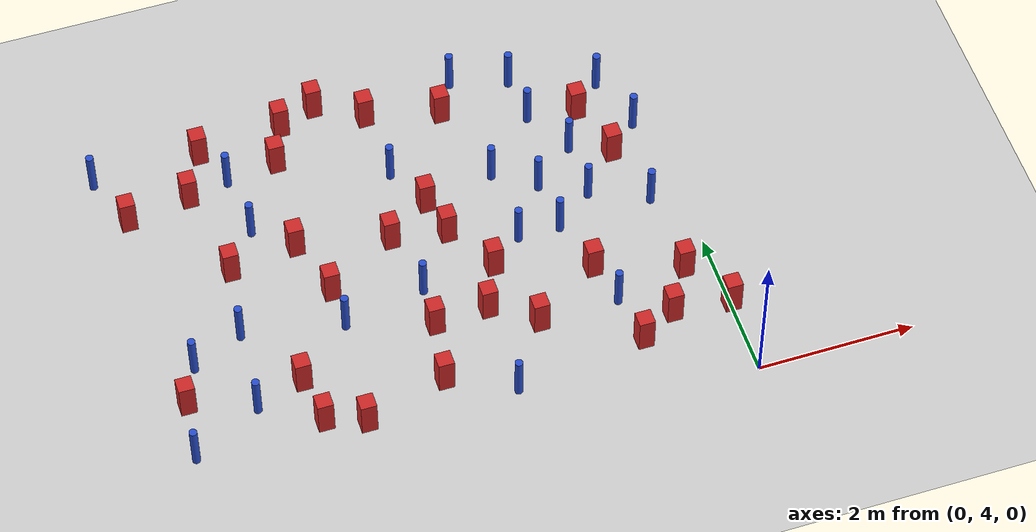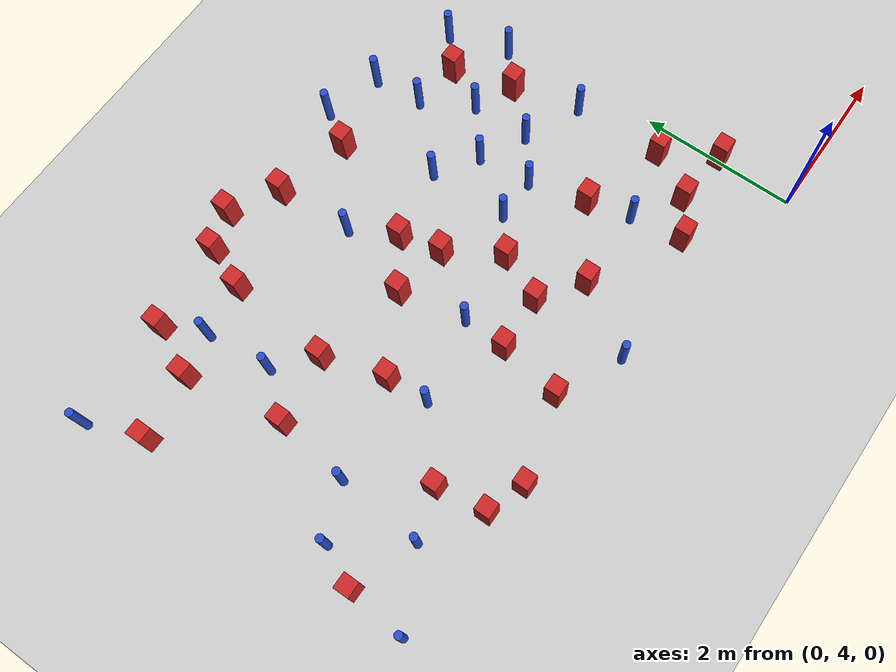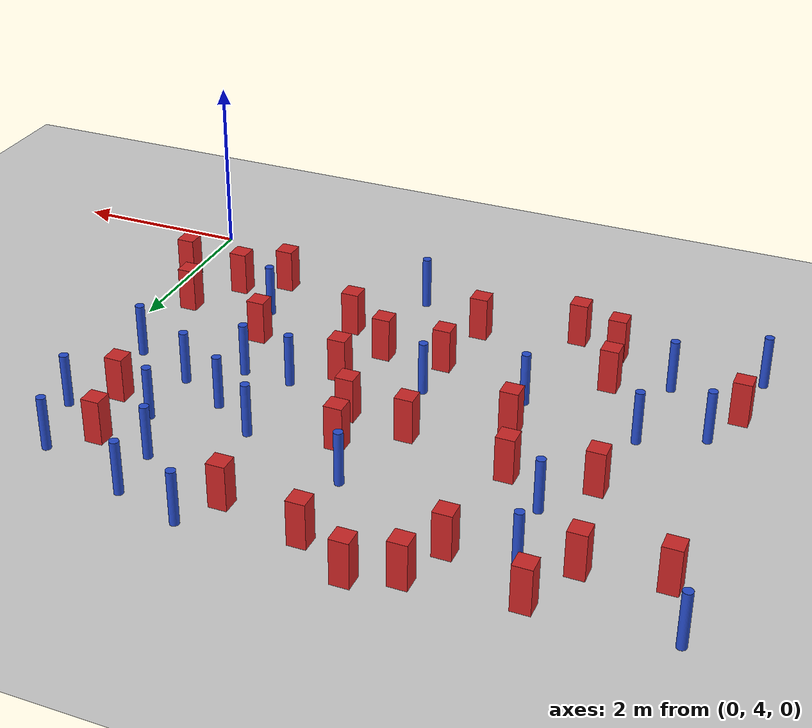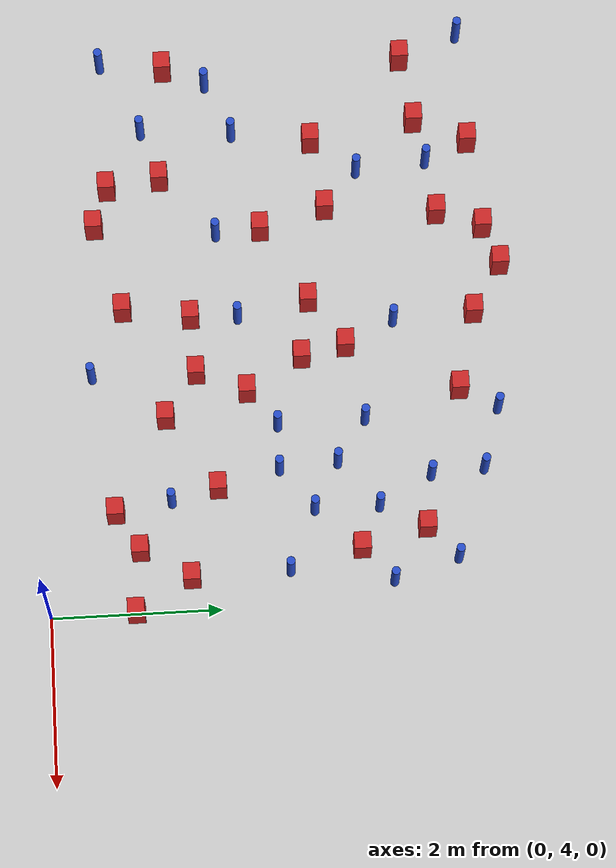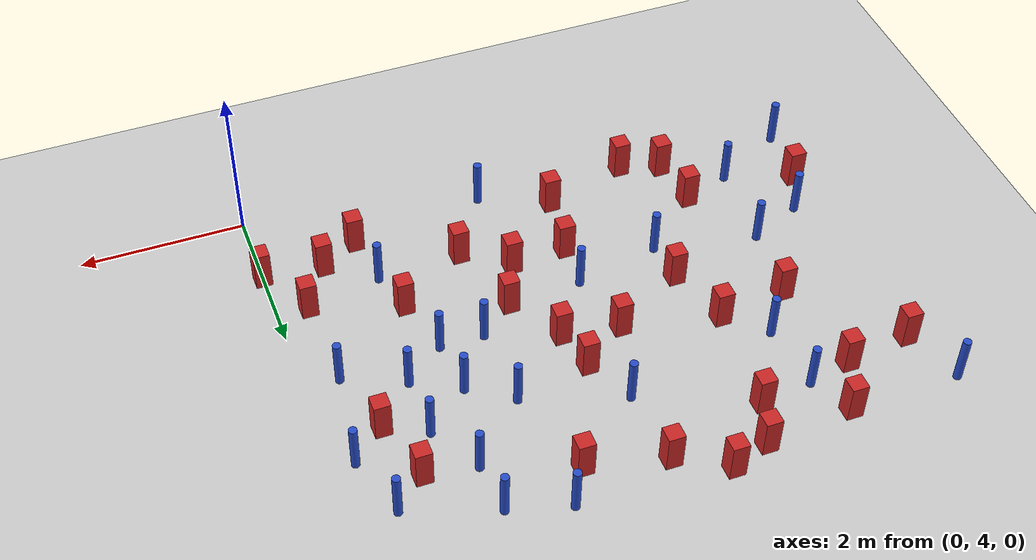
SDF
<sdf version="1.6">
 <world name="default">
  <model name="ground_plane">
   <static>1</static>
   <link name="link">
    <collision name="collision">
     <geometry><plane><normal>0 0 1</normal><size>100 100</size></plane></geometry>
     <surface><friction><ode><mu>100</mu><mu2>50</mu2></ode></friction></surface>
    </collision>
    <visual name="visual">
     <cast_shadows>0</cast_shadows>
     <geometry><plane><normal>0 0 1</normal><size>100 100</size></plane></geometry>
     <material>
      <ambient>1.0 1.0 1.0 1.0</ambient>
      <diffuse>0.8 0.8 0.8 1.0</diffuse>
      <specular>0.01 0.01 0.01 1.000000</specular>
     </material>
    </visual>
   </link>
  </model>
  <model name="pole_obstacle0">
   <static>true</static>
   <pose>-1.12669661835 7.13284007502 7.38925637345e-09 -8.47170692799e-08 1.24976765033e-08 -1.74513093018e-07</pose>
   <link name="link">
    <pose>0 0 0.3 0 -0 0</pose>
    <inertial>
     <mass>1</mass>
     <inertia><ixx>0.145833</ixx><ixy>0</ixy><ixz>0</ixz><iyy>0.145833</iyy><iyz>0</iyz><izz>0.125</izz></inertia>
    </inertial>
    <collision name="collision">
     <geometry><cylinder><radius>0.05</radius><length>.6</length></cylinder></geometry>
    </collision>
    <visual name="visual">
     <geometry><cylinder><radius>0.05</radius><length>.6</length></cylinder></geometry>
     <material>
      <script><name>Gazebo/Blue</name><uri>file://media/materials/scripts/gazebo.material</uri></script>
     </material>
    </visual>
   </link>
  </model>
  <model name="pole_obstacle2">
   <static>true</static>
   <pose>-4.58328691673 6.12758098638 7.38925637345e-09 -8.47170692796e-08 1.24976764786e-08 -1.74513093032e-07</pose>
   <link name="link">
    <pose>0 0 0.3 0 -0 0</pose>
    <inertial>
     <mass>1</mass>
     <inertia><ixx>0.145833</ixx><ixy>0</ixy><ixz>0</ixz><iyy>0.145833</iyy><iyz>0</iyz><izz>0.125</izz></inertia>
    </inertial>
    <collision name="collision">
     <geometry><cylinder><radius>0.05</radius><length>.6</length></cylinder></geometry>
    </collision>
    <visual name="visual">
     <geometry><cylinder><radius>0.05</radius><length>.6</length></cylinder></geometry>
     <material>
      <script><name>Gazebo/Blue</name><uri>file://media/materials/scripts/gazebo.material</uri></script>
     </material>
    </visual>
   </link>
  </model>
  <model name="pole_obstacle3">
   <static>true</static>
   <pose>-6.9991059545 9.16685258325 7.38925637345e-09 -8.471706928e-08 1.24976765081e-08 -1.74513093015e-07</pose>
   <link name="link">
    <pose>0 0 0.3 0 -0 0</pose>
    <inertial>
     <mass>1</mass>
     <inertia><ixx>0.145833</ixx><ixy>0</ixy><ixz>0</ixz><iyy>0.145833</iyy><iyz>0</iyz><izz>0.125</izz></inertia>
    </inertial>
    <collision name="collision">
     <geometry><cylinder><radius>0.05</radius><length>.6</length></cylinder></geometry>
    </collision>
    <visual name="visual">
     <geometry><cylinder><radius>0.05</radius><length>.6</length></cylinder></geometry>
     <material>
      <script><name>Gazebo/Blue</name><uri>file://media/materials/scripts/gazebo.material</uri></script>
     </material>
    </visual>
   </link>
  </model>
  <model name="pole_obstacle10">
   <static>true</static>
   <pose>-5.38365069876 8.69273519656 7.38925637345e-09 -8.471706928e-08 1.24976765081e-08 -1.74513093015e-07</pose>
   <link name="link">
    <pose>0 0 0.3 0 -0 0</pose>
    <inertial>
     <mass>1</mass>
     <inertia><ixx>0.145833</ixx><ixy>0</ixy><ixz>0</ixz><iyy>0.145833</iyy><iyz>0</iyz><izz>0.125</izz></inertia>
    </inertial>
    <collision name="collision">
     <geometry><cylinder><radius>0.05</radius><length>.6</length></cylinder></geometry>
    </collision>
    <visual name="visual">
     <geometry><cylinder><radius>0.05</radius><length>.6</length></cylinder></geometry>
     <material>
      <script><name>Gazebo/Blue</name><uri>file://media/materials/scripts/gazebo.material</uri></script>
     </material>
    </visual>
   </link>
  </model>
  <model name="square_post_obstacle11">
   <static>true</static>
   <pose>-4.04240728268 9.49389917569 1.91545236811e-07 -7.35059704564e-06 1.12565212e-07 2.39332434364e-05</pose>
   <link name="link">
    <pose>0 0 0.25 0 -0 0</pose>
    <inertial>
     <mass>100</mass>
     <inertia>
      <ixx>0.166667</ixx>
      <ixy>0</ixy>
      <ixz>0</ixz>
      <iyy>0.166667</iyy>
      <iyz>0</iyz>
      <izz>0.166667</izz>
     </inertia>
    </inertial>
    <collision name="collision"><geometry><box><size>.2 .2 .5</size></box></geometry></collision>
    <visual name="visual">
     <geometry><box><size>.2 .2 .5</size></box></geometry>
     <material>
      <script><name>Gazebo/Red</name><uri>file://media/materials/scripts/gazebo.material</uri></script>
     </material>
    </visual>
   </link>
  </model>
  <model name="pole_obstacle15">
   <static>true</static>
   <pose>-3.52819994219 6.34154515081 7.38925637345e-09 -8.47170692798e-08 1.24976765033e-08 -1.74513093019e-07</pose>
   <link name="link">
    <pose>0 0 0.3 0 -0 0</pose>
    <inertial>
     <mass>1</mass>
     <inertia><ixx>0.145833</ixx><ixy>0</ixy><ixz>0</ixz><iyy>0.145833</iyy><iyz>0</iyz><izz>0.125</izz></inertia>
    </inertial>
    <collision name="collision">
     <geometry><cylinder><radius>0.05</radius><length>.6</length></cylinder></geometry>
    </collision>
    <visual name="visual">
     <geometry><cylinder><radius>0.05</radius><length>.6</length></cylinder></geometry>
     <material>
      <script><name>Gazebo/Blue</name><uri>file://media/materials/scripts/gazebo.material</uri></script>
     </material>
    </visual>
   </link>
  </model>
  <model name="pole_obstacle17">
   <static>true</static>
   <pose>-3.39878785929 8.18392674902 7.38925637345e-09 -8.47170692793e-08 1.24976764408e-08 -1.74513093041e-07</pose>
   <link name="link">
    <pose>0 0 0.3 0 -0 0</pose>
    <inertial>
     <mass>1</mass>
     <inertia><ixx>0.145833</ixx><ixy>0</ixy><ixz>0</ixz><iyy>0.145833</iyy><iyz>0</iyz><izz>0.125</izz></inertia>
    </inertial>
    <collision name="collision">
     <geometry><cylinder><radius>0.05</radius><length>.6</length></cylinder></geometry>
    </collision>
    <visual name="visual">
     <geometry><cylinder><radius>0.05</radius><length>.6</length></cylinder></geometry>
     <material>
      <script><name>Gazebo/Blue</name><uri>file://media/materials/scripts/gazebo.material</uri></script>
     </material>
    </visual>
   </link>
  </model>
  <model name="pole_obstacle26">
   <static>true</static>
   <pose>-6.81604922939 4.81510808099 7.38925637345e-09 -8.47170692796e-08 1.24976764786e-08 -1.74513093032e-07</pose>
   <link name="link">
    <pose>0 0 0.3 0 -0 0</pose>
    <inertial>
     <mass>1</mass>
     <inertia><ixx>0.145833</ixx><ixy>0</ixy><ixz>0</ixz><iyy>0.145833</iyy><iyz>0</iyz><izz>0.125</izz></inertia>
    </inertial>
    <collision name="collision">
     <geometry><cylinder><radius>0.05</radius><length>.6</length></cylinder></geometry>
    </collision>
    <visual name="visual">
     <geometry><cylinder><radius>0.05</radius><length>.6</length></cylinder></geometry>
     <material>
      <script><name>Gazebo/Blue</name><uri>file://media/materials/scripts/gazebo.material</uri></script>
     </material>
    </visual>
   </link>
  </model>
  <model name="square_post_obstacle20">
   <static>true</static>
   <pose>-2.32262070023 5.43514400345 1.91545236811e-07 -7.35059704564e-06 1.12565212e-07 2.39332434364e-05</pose>
   <link name="link">
    <pose>0 0 0.25 0 -0 0</pose>
    <inertial>
     <mass>100</mass>
     <inertia>
      <ixx>0.166667</ixx>
      <ixy>0</ixy>
      <ixz>0</ixz>
      <iyy>0.166667</iyy>
      <iyz>0</iyz>
      <izz>0.166667</izz>
     </inertia>
    </inertial>
    <collision name="collision"><geometry><box><size>.2 .2 .5</size></box></geometry></collision>
    <visual name="visual">
     <geometry><box><size>.2 .2 .5</size></box></geometry>
     <material>
      <script><name>Gazebo/Red</name><uri>file://media/materials/scripts/gazebo.material</uri></script>
     </material>
    </visual>
   </link>
  </model>
  <model name="square_post_obstacle23">
   <static>true</static>
   <pose>-2.99444622453 7.07370898037 1.91545236811e-07 -7.35059704564e-06 1.12565212e-07 2.39332434364e-05</pose>
   <link name="link">
    <pose>0 0 0.25 0 -0 0</pose>
    <inertial>
     <mass>100</mass>
     <inertia>
      <ixx>0.166667</ixx>
      <ixy>0</ixy>
      <ixz>0</ixz>
      <iyy>0.166667</iyy>
      <iyz>0</iyz>
      <izz>0.166667</izz>
     </inertia>
    </inertial>
    <collision name="collision"><geometry><box><size>.2 .2 .5</size></box></geometry></collision>
    <visual name="visual">
     <geometry><box><size>.2 .2 .5</size></box></geometry>
     <material>
      <script><name>Gazebo/Red</name><uri>file://media/materials/scripts/gazebo.material</uri></script>
     </material>
    </visual>
   </link>
  </model>
  <model name="pole_obstacle35">
   <static>true</static>
   <pose>-2.253707353 9.35775532608 7.38925637345e-09 -8.47170692793e-08 1.24976764408e-08 -1.74513093041e-07</pose>
   <link name="link">
    <pose>0 0 0.3 0 -0 0</pose>
    <inertial>
     <mass>1</mass>
     <inertia><ixx>0.145833</ixx><ixy>0</ixy><ixz>0</ixz><iyy>0.145833</iyy><iyz>0</iyz><izz>0.125</izz></inertia>
    </inertial>
    <collision name="collision">
     <geometry><cylinder><radius>0.05</radius><length>.6</length></cylinder></geometry>
    </collision>
    <visual name="visual">
     <geometry><cylinder><radius>0.05</radius><length>.6</length></cylinder></geometry>
     <material>
      <script><name>Gazebo/Blue</name><uri>file://media/materials/scripts/gazebo.material</uri></script>
     </material>
    </visual>
   </link>
  </model>
  <model name="square_post_obstacle31">
   <static>true</static>
   <pose>-4.7261057558 8.78004790249 1.91545236811e-07 -7.35059704564e-06 1.12565212e-07 2.39332434364e-05</pose>
   <link name="link">
    <pose>0 0 0.25 0 -0 0</pose>
    <inertial>
     <mass>100</mass>
     <inertia>
      <ixx>0.166667</ixx>
      <ixy>0</ixy>
      <ixz>0</ixz>
      <iyy>0.166667</iyy>
      <iyz>0</iyz>
      <izz>0.166667</izz>
     </inertia>
    </inertial>
    <collision name="collision"><geometry><box><size>.2 .2 .5</size></box></geometry></collision>
    <visual name="visual">
     <geometry><box><size>.2 .2 .5</size></box></geometry>
     <material>
      <script><name>Gazebo/Red</name><uri>file://media/materials/scripts/gazebo.material</uri></script>
     </material>
    </visual>
   </link>
  </model>
  <model name="square_post_obstacle33">
   <static>true</static>
   <pose>0.00687568278995 5.00040817203 1.91545236811e-07 -7.35059704564e-06 1.12565212e-07 2.39332434364e-05</pose>
   <link name="link">
    <pose>0 0 0.25 0 -0 0</pose>
    <inertial>
     <mass>100</mass>
     <inertia>
      <ixx>0.166667</ixx>
      <ixy>0</ixy>
      <ixz>0</ixz>
      <iyy>0.166667</iyy>
      <iyz>0</iyz>
      <izz>0.166667</izz>
     </inertia>
    </inertial>
    <collision name="collision"><geometry><box><size>.2 .2 .5</size></box></geometry></collision>
    <visual name="visual">
     <geometry><box><size>.2 .2 .5</size></box></geometry>
     <material>
      <script><name>Gazebo/Red</name><uri>file://media/materials/scripts/gazebo.material</uri></script>
     </material>
    </visual>
   </link>
  </model>
  <model name="square_post_obstacle36">
   <static>true</static>
   <pose>-1.19484303404 4.80414725474 1.91545236811e-07 -7.35059704564e-06 1.12565212e-07 2.39332434364e-05</pose>
   <link name="link">
    <pose>0 0 0.25 0 -0 0</pose>
    <inertial>
     <mass>100</mass>
     <inertia>
      <ixx>0.166667</ixx>
      <ixy>0</ixy>
      <ixz>0</ixz>
      <iyy>0.166667</iyy>
      <iyz>0</iyz>
      <izz>0.166667</izz>
     </inertia>
    </inertial>
    <collision name="collision"><geometry><box><size>.2 .2 .5</size></box></geometry></collision>
    <visual name="visual">
     <geometry><box><size>.2 .2 .5</size></box></geometry>
     <material>
      <script><name>Gazebo/Red</name><uri>file://media/materials/scripts/gazebo.material</uri></script>
     </material>
    </visual>
   </link>
  </model>
  <model name="pole_obstacle48">
   <static>true</static>
   <pose>-5.84738374619 6.3715535261 7.38925637345e-09 -8.47170692796e-08 1.24976764786e-08 -1.74513093032e-07</pose>
   <link name="link">
    <pose>0 0 0.3 0 -0 0</pose>
    <inertial>
     <mass>1</mass>
     <inertia><ixx>0.145833</ixx><ixy>0</ixy><ixz>0</ixz><iyy>0.145833</iyy><iyz>0</iyz><izz>0.125</izz></inertia>
    </inertial>
    <collision name="collision">
     <geometry><cylinder><radius>0.05</radius><length>.6</length></cylinder></geometry>
    </collision>
    <visual name="visual">
     <geometry><cylinder><radius>0.05</radius><length>.6</length></cylinder></geometry>
     <material>
      <script><name>Gazebo/Blue</name><uri>file://media/materials/scripts/gazebo.material</uri></script>
     </material>
    </visual>
   </link>
  </model>
  <model name="square_post_obstacle48">
   <static>true</static>
   <pose>-3.69403248399 7.18826730205 1.91545236811e-07 -7.35059704564e-06 1.12565212e-07 2.39332434364e-05</pose>
   <link name="link">
    <pose>0 0 0.25 0 -0 0</pose>
    <inertial>
     <mass>100</mass>
     <inertia>
      <ixx>0.166667</ixx>
      <ixy>0</ixy>
      <ixz>0</ixz>
      <iyy>0.166667</iyy>
      <iyz>0</iyz>
      <izz>0.166667</izz>
     </inertia>
    </inertial>
    <collision name="collision"><geometry><box><size>.2 .2 .5</size></box></geometry></collision>
    <visual name="visual">
     <geometry><box><size>.2 .2 .5</size></box></geometry>
     <material>
      <script><name>Gazebo/Red</name><uri>file://media/materials/scripts/gazebo.material</uri></script>
     </material>
    </visual>
   </link>
  </model>
  <model name="square_post_obstacle50">
   <static>true</static>
   <pose>-2.60241069486 6.40827683217 1.91545236811e-07 -7.35059704564e-06 1.12565212e-07 2.39332434364e-05</pose>
   <link name="link">
    <pose>0 0 0.25 0 -0 0</pose>
    <inertial>
     <mass>100</mass>
     <inertia>
      <ixx>0.166667</ixx>
      <ixy>0</ixy>
      <ixz>0</ixz>
      <iyy>0.166667</iyy>
      <iyz>0</iyz>
      <izz>0.166667</izz>
     </inertia>
    </inertial>
    <collision name="collision"><geometry><box><size>.2 .2 .5</size></box></geometry></collision>
    <visual name="visual">
     <geometry><box><size>.2 .2 .5</size></box></geometry>
     <material>
      <script><name>Gazebo/Red</name><uri>file://media/materials/scripts/gazebo.material</uri></script>
     </material>
    </visual>
   </link>
  </model>
  <model name="square_post_obstacle54">
   <static>true</static>
   <pose>-0.849953367461 8.43277670438 1.91545236811e-07 -7.35059704564e-06 1.12565212e-07 2.39332434364e-05</pose>
   <link name="link">
    <pose>0 0 0.25 0 -0 0</pose>
    <inertial>
     <mass>100</mass>
     <inertia>
      <ixx>0.166667</ixx>
      <ixy>0</ixy>
      <ixz>0</ixz>
      <iyy>0.166667</iyy>
      <iyz>0</iyz>
      <izz>0.166667</izz>
     </inertia>
    </inertial>
    <collision name="collision"><geometry><box><size>.2 .2 .5</size></box></geometry></collision>
    <visual name="visual">
     <geometry><box><size>.2 .2 .5</size></box></geometry>
     <material>
      <script><name>Gazebo/Red</name><uri>file://media/materials/scripts/gazebo.material</uri></script>
     </material>
    </visual>
   </link>
  </model>
  <model name="square_post_obstacle55">
   <static>true</static>
   <pose>-4.7364227873 4.67444020177 1.91545236811e-07 -7.35059704564e-06 1.12565212e-07 2.39332434364e-05</pose>
   <link name="link">
    <pose>0 0 0.25 0 -0 0</pose>
    <inertial>
     <mass>100</mass>
     <inertia>
      <ixx>0.166667</ixx>
      <ixy>0</ixy>
      <ixz>0</ixz>
      <iyy>0.166667</iyy>
      <iyz>0</iyz>
      <izz>0.166667</izz>
     </inertia>
    </inertial>
    <collision name="collision"><geometry><box><size>.2 .2 .5</size></box></geometry></collision>
    <visual name="visual">
     <geometry><box><size>.2 .2 .5</size></box></geometry>
     <material>
      <script><name>Gazebo/Red</name><uri>file://media/materials/scripts/gazebo.material</uri></script>
     </material>
    </visual>
   </link>
  </model>
  <model name="square_post_obstacle60">
   <static>true</static>
   <pose>-4.61618073401 6.65964601442 1.91545236811e-07 -7.35059704564e-06 1.12565212e-07 2.39332434364e-05</pose>
   <link name="link">
    <pose>0 0 0.25 0 -0 0</pose>
    <inertial>
     <mass>100</mass>
     <inertia>
      <ixx>0.166667</ixx>
      <ixy>0</ixy>
      <ixz>0</ixz>
      <iyy>0.166667</iyy>
      <iyz>0</iyz>
      <izz>0.166667</izz>
     </inertia>
    </inertial>
    <collision name="collision"><geometry><box><size>.2 .2 .5</size></box></geometry></collision>
    <visual name="visual">
     <geometry><box><size>.2 .2 .5</size></box></geometry>
     <material>
      <script><name>Gazebo/Red</name><uri>file://media/materials/scripts/gazebo.material</uri></script>
     </material>
    </visual>
   </link>
  </model>
  <model name="pole_obstacle72">
   <static>true</static>
   <pose>-1.68312635416 7.43246428883 7.38925637345e-09 -8.47170692799e-08 1.24976765033e-08 -1.74513093018e-07</pose>
   <link name="link">
    <pose>0 0 0.3 0 -0 0</pose>
    <inertial>
     <mass>1</mass>
     <inertia><ixx>0.145833</ixx><ixy>0</ixy><ixz>0</ixz><iyy>0.145833</iyy><iyz>0</iyz><izz>0.125</izz></inertia>
    </inertial>
    <collision name="collision">
     <geometry><cylinder><radius>0.05</radius><length>.6</length></cylinder></geometry>
    </collision>
    <visual name="visual">
     <geometry><cylinder><radius>0.05</radius><length>.6</length></cylinder></geometry>
     <material>
      <script><name>Gazebo/Blue</name><uri>file://media/materials/scripts/gazebo.material</uri></script>
     </material>
    </visual>
   </link>
  </model>
  <model name="square_post_obstacle64">
   <static>true</static>
   <pose>-6.72600411321 5.57650700808 1.91545236811e-07 -7.35059704564e-06 1.12565212e-07 2.39332434364e-05</pose>
   <link name="link">
    <pose>0 0 0.25 0 -0 0</pose>
    <inertial>
     <mass>100</mass>
     <inertia>
      <ixx>0.166667</ixx>
      <ixy>0</ixy>
      <ixz>0</ixz>
      <iyy>0.166667</iyy>
      <iyz>0</iyz>
      <izz>0.166667</izz>
     </inertia>
    </inertial>
    <collision name="collision"><geometry><box><size>.2 .2 .5</size></box></geometry></collision>
    <visual name="visual">
     <geometry><box><size>.2 .2 .5</size></box></geometry>
     <material>
      <script><name>Gazebo/Red</name><uri>file://media/materials/scripts/gazebo.material</uri></script>
     </material>
    </visual>
   </link>
  </model>
  <model name="pole_obstacle75">
   <static>true</static>
   <pose>-5.93002366397 5.27715755334 7.38925637345e-09 -8.47170692796e-08 1.24976764786e-08 -1.74513093032e-07</pose>
   <link name="link">
    <pose>0 0 0.3 0 -0 0</pose>
    <inertial>
     <mass>1</mass>
     <inertia><ixx>0.145833</ixx><ixy>0</ixy><ixz>0</ixz><iyy>0.145833</iyy><iyz>0</iyz><izz>0.125</izz></inertia>
    </inertial>
    <collision name="collision">
     <geometry><cylinder><radius>0.05</radius><length>.6</length></cylinder></geometry>
    </collision>
    <visual name="visual">
     <geometry><cylinder><radius>0.05</radius><length>.6</length></cylinder></geometry>
     <material>
      <script><name>Gazebo/Blue</name><uri>file://media/materials/scripts/gazebo.material</uri></script>
     </material>
    </visual>
   </link>
  </model>
  <model name="square_post_obstacle67">
   <static>true</static>
   <pose>-5.91115941386 8.57652619234 1.91545236811e-07 -7.35059704564e-06 1.12565212e-07 2.39332434364e-05</pose>
   <link name="link">
    <pose>0 0 0.25 0 -0 0</pose>
    <inertial>
     <mass>100</mass>
     <inertia>
      <ixx>0.166667</ixx>
      <ixy>0</ixy>
      <ixz>0</ixz>
      <iyy>0.166667</iyy>
      <iyz>0</iyz>
      <izz>0.166667</izz>
     </inertia>
    </inertial>
    <collision name="collision"><geometry><box><size>.2 .2 .5</size></box></geometry></collision>
    <visual name="visual">
     <geometry><box><size>.2 .2 .5</size></box></geometry>
     <material>
      <script><name>Gazebo/Red</name><uri>file://media/materials/scripts/gazebo.material</uri></script>
     </material>
    </visual>
   </link>
  </model>
  <model name="square_post_obstacle69">
   <static>true</static>
   <pose>-3.11087324016 7.60017453942 1.91545236811e-07 -7.35059704564e-06 1.12565212e-07 2.39332434364e-05</pose>
   <link name="link">
    <pose>0 0 0.25 0 -0 0</pose>
    <inertial>
     <mass>100</mass>
     <inertia>
      <ixx>0.166667</ixx>
      <ixy>0</ixy>
      <ixz>0</ixz>
      <iyy>0.166667</iyy>
      <iyz>0</iyz>
      <izz>0.166667</izz>
     </inertia>
    </inertial>
    <collision name="collision"><geometry><box><size>.2 .2 .5</size></box></geometry></collision>
    <visual name="visual">
     <geometry><box><size>.2 .2 .5</size></box></geometry>
     <material>
      <script><name>Gazebo/Red</name><uri>file://media/materials/scripts/gazebo.material</uri></script>
     </material>
    </visual>
   </link>
  </model>
  <model name="pole_obstacle81">
   <static>true</static>
   <pose>-1.52633815057 9.1509183317 7.38925637345e-09 -8.47170692798e-08 1.24976764881e-08 -1.74513093027e-07</pose>
   <link name="link">
    <pose>0 0 0.3 0 -0 0</pose>
    <inertial>
     <mass>1</mass>
     <inertia><ixx>0.145833</ixx><ixy>0</ixy><ixz>0</ixz><iyy>0.145833</iyy><iyz>0</iyz><izz>0.125</izz></inertia>
    </inertial>
    <collision name="collision">
     <geometry><cylinder><radius>0.05</radius><length>.6</length></cylinder></geometry>
    </collision>
    <visual name="visual">
     <geometry><cylinder><radius>0.05</radius><length>.6</length></cylinder></geometry>
     <material>
      <script><name>Gazebo/Blue</name><uri>file://media/materials/scripts/gazebo.material</uri></script>
     </material>
    </visual>
   </link>
  </model>
  <model name="square_post_obstacle70">
   <static>true</static>
   <pose>-6.72550099656 8.45731439431 1.91545236811e-07 -7.35059704564e-06 1.12565212e-07 2.39332434364e-05</pose>
   <link name="link">
    <pose>0 0 0.25 0 -0 0</pose>
    <inertial>
     <mass>100</mass>
     <inertia>
      <ixx>0.166667</ixx>
      <ixy>0</ixy>
      <ixz>0</ixz>
      <iyy>0.166667</iyy>
      <iyz>0</iyz>
      <izz>0.166667</izz>
     </inertia>
    </inertial>
    <collision name="collision"><geometry><box><size>.2 .2 .5</size></box></geometry></collision>
    <visual name="visual">
     <geometry><box><size>.2 .2 .5</size></box></geometry>
     <material>
      <script><name>Gazebo/Red</name><uri>file://media/materials/scripts/gazebo.material</uri></script>
     </material>
    </visual>
   </link>
  </model>
  <model name="square_post_obstacle75">
   <static>true</static>
   <pose>-5.71134267573 7.32181238106 1.91545236811e-07 -7.35059704564e-06 1.12565212e-07 2.39332434364e-05</pose>
   <link name="link">
    <pose>0 0 0.25 0 -0 0</pose>
    <inertial>
     <mass>100</mass>
     <inertia>
      <ixx>0.166667</ixx>
      <ixy>0</ixy>
      <ixz>0</ixz>
      <iyy>0.166667</iyy>
      <iyz>0</iyz>
      <izz>0.166667</izz>
     </inertia>
    </inertial>
    <collision name="collision"><geometry><box><size>.2 .2 .5</size></box></geometry></collision>
    <visual name="visual">
     <geometry><box><size>.2 .2 .5</size></box></geometry>
     <material>
      <script><name>Gazebo/Red</name><uri>file://media/materials/scripts/gazebo.material</uri></script>
     </material>
    </visual>
   </link>
  </model>
  <model name="pole_obstacle92">
   <static>true</static>
   <pose>-0.407144612341 6.81246129931 7.38925637345e-09 -8.471706928e-08 1.24976765079e-08 -1.74513093015e-07</pose>
   <link name="link">
    <pose>0 0 0.3 0 -0 0</pose>
    <inertial>
     <mass>1</mass>
     <inertia><ixx>0.145833</ixx><ixy>0</ixy><ixz>0</ixz><iyy>0.145833</iyy><iyz>0</iyz><izz>0.125</izz></inertia>
    </inertial>
    <collision name="collision">
     <geometry><cylinder><radius>0.05</radius><length>.6</length></cylinder></geometry>
    </collision>
    <visual name="visual">
     <geometry><cylinder><radius>0.05</radius><length>.6</length></cylinder></geometry>
     <material>
      <script><name>Gazebo/Blue</name><uri>file://media/materials/scripts/gazebo.material</uri></script>
     </material>
    </visual>
   </link>
  </model>
  <model name="pole_obstacle95">
   <static>true</static>
   <pose>-6.50577830318 6.07841796855 7.38925637345e-09 -8.47170692796e-08 1.24976764786e-08 -1.74513093032e-07</pose>
   <link name="link">
    <pose>0 0 0.3 0 -0 0</pose>
    <inertial>
     <mass>1</mass>
     <inertia><ixx>0.145833</ixx><ixy>0</ixy><ixz>0</ixz><iyy>0.145833</iyy><iyz>0</iyz><izz>0.125</izz></inertia>
    </inertial>
    <collision name="collision">
     <geometry><cylinder><radius>0.05</radius><length>.6</length></cylinder></geometry>
    </collision>
    <visual name="visual">
     <geometry><cylinder><radius>0.05</radius><length>.6</length></cylinder></geometry>
     <material>
      <script><name>Gazebo/Blue</name><uri>file://media/materials/scripts/gazebo.material</uri></script>
     </material>
    </visual>
   </link>
  </model>
  <model name="pole_obstacle98">
   <static>true</static>
   <pose>-0.462479982063 8.78163962766 7.38925637345e-09 -8.47170692799e-08 1.24976764918e-08 -1.74513093025e-07</pose>
   <link name="link">
    <pose>0 0 0.3 0 -0 0</pose>
    <inertial>
     <mass>1</mass>
     <inertia><ixx>0.145833</ixx><ixy>0</ixy><ixz>0</ixz><iyy>0.145833</iyy><iyz>0</iyz><izz>0.125</izz></inertia>
    </inertial>
    <collision name="collision">
     <geometry><cylinder><radius>0.05</radius><length>.6</length></cylinder></geometry>
    </collision>
    <visual name="visual">
     <geometry><cylinder><radius>0.05</radius><length>.6</length></cylinder></geometry>
     <material>
      <script><name>Gazebo/Blue</name><uri>file://media/materials/scripts/gazebo.material</uri></script>
     </material>
    </visual>
   </link>
  </model>
  <model name="square_post_obstacle91">
   <static>true</static>
   <pose>-2.51736509793 8.91621680287 1.91545236811e-07 -7.35059704564e-06 1.12565212e-07 2.39332434364e-05</pose>
   <link name="link">
    <pose>0 0 0.25 0 -0 0</pose>
    <inertial>
     <mass>100</mass>
     <inertia>
      <ixx>0.166667</ixx>
      <ixy>0</ixy>
      <ixz>0</ixz>
      <iyy>0.166667</iyy>
      <iyz>0</iyz>
      <izz>0.166667</izz>
     </inertia>
    </inertial>
    <collision name="collision"><geometry><box><size>.2 .2 .5</size></box></geometry></collision>
    <visual name="visual">
     <geometry><box><size>.2 .2 .5</size></box></geometry>
     <material>
      <script><name>Gazebo/Red</name><uri>file://media/materials/scripts/gazebo.material</uri></script>
     </material>
    </visual>
   </link>
  </model>
  <model name="square_post_obstacle99">
   <static>true</static>
   <pose>-5.22084537929 4.84490181295 1.91545236811e-07 -7.35059704564e-06 1.12565212e-07 2.39332434364e-05</pose>
   <link name="link">
    <pose>0 0 0.25 0 -0 0</pose>
    <inertial>
     <mass>100</mass>
     <inertia>
      <ixx>0.166667</ixx>
      <ixy>0</ixy>
      <ixz>0</ixz>
      <iyy>0.166667</iyy>
      <iyz>0</iyz>
      <izz>0.166667</izz>
     </inertia>
    </inertial>
    <collision name="collision"><geometry><box><size>.2 .2 .5</size></box></geometry></collision>
    <visual name="visual">
     <geometry><box><size>.2 .2 .5</size></box></geometry>
     <material>
      <script><name>Gazebo/Red</name><uri>file://media/materials/scripts/gazebo.material</uri></script>
     </material>
    </visual>
   </link>
  </model>
  <model name="pole_obstacle108">
   <static>true</static>
   <pose>-1.47481660177 8.52130449734 7.38925637345e-09 -8.47170692798e-08 1.24976764881e-08 -1.74513093027e-07</pose>
   <link name="link">
    <pose>0 0 0.3 0 -0 0</pose>
    <inertial>
     <mass>1</mass>
     <inertia><ixx>0.145833</ixx><ixy>0</ixy><ixz>0</ixz><iyy>0.145833</iyy><iyz>0</iyz><izz>0.125</izz></inertia>
    </inertial>
    <collision name="collision">
     <geometry><cylinder><radius>0.05</radius><length>.6</length></cylinder></geometry>
    </collision>
    <visual name="visual">
     <geometry><cylinder><radius>0.05</radius><length>.6</length></cylinder></geometry>
     <material>
      <script><name>Gazebo/Blue</name><uri>file://media/materials/scripts/gazebo.material</uri></script>
     </material>
    </visual>
   </link>
  </model>
  <model name="pole_obstacle111">
   <static>true</static>
   <pose>-2.19327876364 7.78209219079 7.38925637345e-09 -8.47170692798e-08 1.24976765033e-08 -1.74513093019e-07</pose>
   <link name="link">
    <pose>0 0 0.3 0 -0 0</pose>
    <inertial>
     <mass>1</mass>
     <inertia><ixx>0.145833</ixx><ixy>0</ixy><ixz>0</ixz><iyy>0.145833</iyy><iyz>0</iyz><izz>0.125</izz></inertia>
    </inertial>
    <collision name="collision">
     <geometry><cylinder><radius>0.05</radius><length>.6</length></cylinder></geometry>
    </collision>
    <visual name="visual">
     <geometry><cylinder><radius>0.05</radius><length>.6</length></cylinder></geometry>
     <material>
      <script><name>Gazebo/Blue</name><uri>file://media/materials/scripts/gazebo.material</uri></script>
     </material>
    </visual>
   </link>
  </model>
  <model name="pole_obstacle112">
   <static>true</static>
   <pose>-5.30575793766 7.85135608551 7.38925637345e-09 -8.47170692796e-08 1.24976764786e-08 -1.74513093032e-07</pose>
   <link name="link">
    <pose>0 0 0.3 0 -0 0</pose>
    <inertial>
     <mass>1</mass>
     <inertia><ixx>0.145833</ixx><ixy>0</ixy><ixz>0</ixz><iyy>0.145833</iyy><iyz>0</iyz><izz>0.125</izz></inertia>
    </inertial>
    <collision name="collision">
     <geometry><cylinder><radius>0.05</radius><length>.6</length></cylinder></geometry>
    </collision>
    <visual name="visual">
     <geometry><cylinder><radius>0.05</radius><length>.6</length></cylinder></geometry>
     <material>
      <script><name>Gazebo/Blue</name><uri>file://media/materials/scripts/gazebo.material</uri></script>
     </material>
    </visual>
   </link>
  </model>
  <model name="square_post_obstacle113">
   <static>true</static>
   <pose>-0.373805639169 5.66027745875 1.91545236811e-07 -7.35059704564e-06 1.12565212e-07 2.39332434364e-05</pose>
   <link name="link">
    <pose>0 0 0.25 0 -0 0</pose>
    <inertial>
     <mass>100</mass>
     <inertia>
      <ixx>0.166667</ixx>
      <ixy>0</ixy>
      <ixz>0</ixz>
      <iyy>0.166667</iyy>
      <iyz>0</iyz>
      <izz>0.166667</izz>
     </inertia>
    </inertial>
    <collision name="collision"><geometry><box><size>.2 .2 .5</size></box></geometry></collision>
    <visual name="visual">
     <geometry><box><size>.2 .2 .5</size></box></geometry>
     <material>
      <script><name>Gazebo/Red</name><uri>file://media/materials/scripts/gazebo.material</uri></script>
     </material>
    </visual>
   </link>
  </model>
  <model name="square_post_obstacle117">
   <static>true</static>
   <pose>-3.67890232277 4.9760041443 1.91545236811e-07 -7.35059704564e-06 1.12565212e-07 2.39332434364e-05</pose>
   <link name="link">
    <pose>0 0 0.25 0 -0 0</pose>
    <inertial>
     <mass>100</mass>
     <inertia>
      <ixx>0.166667</ixx>
      <ixy>0</ixy>
      <ixz>0</ixz>
      <iyy>0.166667</iyy>
      <iyz>0</iyz>
      <izz>0.166667</izz>
     </inertia>
    </inertial>
    <collision name="collision"><geometry><box><size>.2 .2 .5</size></box></geometry></collision>
    <visual name="visual">
     <geometry><box><size>.2 .2 .5</size></box></geometry>
     <material>
      <script><name>Gazebo/Red</name><uri>file://media/materials/scripts/gazebo.material</uri></script>
     </material>
    </visual>
   </link>
  </model>
  <model name="pole_obstacle127">
   <static>true</static>
   <pose>-2.16820149392 6.74998523192 7.38925637345e-09 -8.47170692798e-08 1.24976765033e-08 -1.74513093019e-07</pose>
   <link name="link">
    <pose>0 0 0.3 0 -0 0</pose>
    <inertial>
     <mass>1</mass>
     <inertia><ixx>0.145833</ixx><ixy>0</ixy><ixz>0</ixz><iyy>0.145833</iyy><iyz>0</iyz><izz>0.125</izz></inertia>
    </inertial>
    <collision name="collision">
     <geometry><cylinder><radius>0.05</radius><length>.6</length></cylinder></geometry>
    </collision>
    <visual name="visual">
     <geometry><cylinder><radius>0.05</radius><length>.6</length></cylinder></geometry>
     <material>
      <script><name>Gazebo/Blue</name><uri>file://media/materials/scripts/gazebo.material</uri></script>
     </material>
    </visual>
   </link>
  </model>
  <model name="square_post_obstacle129">
   <static>true</static>
   <pose>-4.84912168791 7.44567731599 1.91545236811e-07 -7.35059704564e-06 1.12565212e-07 2.39332434364e-05</pose>
   <link name="link">
    <pose>0 0 0.25 0 -0 0</pose>
    <inertial>
     <mass>100</mass>
     <inertia>
      <ixx>0.166667</ixx>
      <ixy>0</ixy>
      <ixz>0</ixz>
      <iyy>0.166667</iyy>
      <iyz>0</iyz>
      <izz>0.166667</izz>
     </inertia>
    </inertial>
    <collision name="collision"><geometry><box><size>.2 .2 .5</size></box></geometry></collision>
    <visual name="visual">
     <geometry><box><size>.2 .2 .5</size></box></geometry>
     <material>
      <script><name>Gazebo/Red</name><uri>file://media/materials/scripts/gazebo.material</uri></script>
     </material>
    </visual>
   </link>
  </model>
  <model name="pole_obstacle139">
   <static>true</static>
   <pose>-0.227392779723 8.01634059106 7.38925637345e-09 -8.47170692799e-08 1.24976764988e-08 -1.74513093021e-07</pose>
   <link name="link">
    <pose>0 0 0.3 0 -0 0</pose>
    <inertial>
     <mass>1</mass>
     <inertia><ixx>0.145833</ixx><ixy>0</ixy><ixz>0</ixz><iyy>0.145833</iyy><iyz>0</iyz><izz>0.125</izz></inertia>
    </inertial>
    <collision name="collision">
     <geometry><cylinder><radius>0.05</radius><length>.6</length></cylinder></geometry>
    </collision>
    <visual name="visual">
     <geometry><cylinder><radius>0.05</radius><length>.6</length></cylinder></geometry>
     <material>
      <script><name>Gazebo/Blue</name><uri>file://media/materials/scripts/gazebo.material</uri></script>
     </material>
    </visual>
   </link>
  </model>
  <model name="square_post_obstacle135">
   <static>true</static>
   <pose>-5.31418687616 5.48230366976 1.91545236811e-07 -7.35059704564e-06 1.12565212e-07 2.39332434364e-05</pose>
   <link name="link">
    <pose>0 0 0.25 0 -0 0</pose>
    <inertial>
     <mass>100</mass>
     <inertia>
      <ixx>0.166667</ixx>
      <ixy>0</ixy>
      <ixz>0</ixz>
      <iyy>0.166667</iyy>
      <iyz>0</iyz>
      <izz>0.166667</izz>
     </inertia>
    </inertial>
    <collision name="collision"><geometry><box><size>.2 .2 .5</size></box></geometry></collision>
    <visual name="visual">
     <geometry><box><size>.2 .2 .5</size></box></geometry>
     <material>
      <script><name>Gazebo/Red</name><uri>file://media/materials/scripts/gazebo.material</uri></script>
     </material>
    </visual>
   </link>
  </model>
  <model name="square_post_obstacle144">
   <static>true</static>
   <pose>-3.45360809987 9.14426102021 1.91545236811e-07 -7.35059704564e-06 1.12565212e-07 2.39332434364e-05</pose>
   <link name="link">
    <pose>0 0 0.25 0 -0 0</pose>
    <inertial>
     <mass>100</mass>
     <inertia>
      <ixx>0.166667</ixx>
      <ixy>0</ixy>
      <ixz>0</ixz>
      <iyy>0.166667</iyy>
      <iyz>0</iyz>
      <izz>0.166667</izz>
     </inertia>
    </inertial>
    <collision name="collision"><geometry><box><size>.2 .2 .5</size></box></geometry></collision>
    <visual name="visual">
     <geometry><box><size>.2 .2 .5</size></box></geometry>
     <material>
      <script><name>Gazebo/Red</name><uri>file://media/materials/scripts/gazebo.material</uri></script>
     </material>
    </visual>
   </link>
  </model>
  <model name="pole_obstacle154">
   <static>true</static>
   <pose>-1.29854273519 5.46390971637 7.38925637345e-09 -8.47170692799e-08 1.24976765033e-08 -1.74513093018e-07</pose>
   <link name="link">
    <pose>0 0 0.3 0 -0 0</pose>
    <inertial>
     <mass>1</mass>
     <inertia><ixx>0.145833</ixx><ixy>0</ixy><ixz>0</ixz><iyy>0.145833</iyy><iyz>0</iyz><izz>0.125</izz></inertia>
    </inertial>
    <collision name="collision">
     <geometry><cylinder><radius>0.05</radius><length>.6</length></cylinder></geometry>
    </collision>
    <visual name="visual">
     <geometry><cylinder><radius>0.05</radius><length>.6</length></cylinder></geometry>
     <material>
      <script><name>Gazebo/Blue</name><uri>file://media/materials/scripts/gazebo.material</uri></script>
     </material>
    </visual>
   </link>
  </model>
  <model name="square_post_obstacle157">
   <static>true</static>
   <pose>-5.61909496518 9.2061951389 1.91545236811e-07 -7.35059704564e-06 1.12565212e-07 2.39332434364e-05</pose>
   <link name="link">
    <pose>0 0 0.25 0 -0 0</pose>
    <inertial>
     <mass>100</mass>
     <inertia>
      <ixx>0.166667</ixx>
      <ixy>0</ixy>
      <ixz>0</ixz>
      <iyy>0.166667</iyy>
      <iyz>0</iyz>
      <izz>0.166667</izz>
     </inertia>
    </inertial>
    <collision name="collision"><geometry><box><size>.2 .2 .5</size></box></geometry></collision>
    <visual name="visual">
     <geometry><box><size>.2 .2 .5</size></box></geometry>
     <material>
      <script><name>Gazebo/Red</name><uri>file://media/materials/scripts/gazebo.material</uri></script>
     </material>
    </visual>
   </link>
  </model>
  <model name="square_post_obstacle158">
   <static>true</static>
   <pose>-0.636526804199 7.65698078645 1.91545236811e-07 -7.35059704564e-06 1.12565212e-07 2.39332434364e-05</pose>
   <link name="link">
    <pose>0 0 0.25 0 -0 0</pose>
    <inertial>
     <mass>100</mass>
     <inertia>
      <ixx>0.166667</ixx>
      <ixy>0</ixy>
      <ixz>0</ixz>
      <iyy>0.166667</iyy>
      <iyz>0</iyz>
      <izz>0.166667</izz>
     </inertia>
    </inertial>
    <collision name="collision"><geometry><box><size>.2 .2 .5</size></box></geometry></collision>
    <visual name="visual">
     <geometry><box><size>.2 .2 .5</size></box></geometry>
     <material>
      <script><name>Gazebo/Red</name><uri>file://media/materials/scripts/gazebo.material</uri></script>
     </material>
    </visual>
   </link>
  </model>
  <model name="square_post_obstacle160">
   <static>true</static>
   <pose>-0.729806374642 5.07379296102 1.91545236811e-07 -7.35059704564e-06 1.12565212e-07 2.39332434364e-05</pose>
   <link name="link">
    <pose>0 0 0.25 0 -0 0</pose>
    <inertial>
     <mass>100</mass>
     <inertia>
      <ixx>0.166667</ixx>
      <ixy>0</ixy>
      <ixz>0</ixz>
      <iyy>0.166667</iyy>
      <iyz>0</iyz>
      <izz>0.166667</izz>
     </inertia>
    </inertial>
    <collision name="collision"><geometry><box><size>.2 .2 .5</size></box></geometry></collision>
    <visual name="visual">
     <geometry><box><size>.2 .2 .5</size></box></geometry>
     <material>
      <script><name>Gazebo/Red</name><uri>file://media/materials/scripts/gazebo.material</uri></script>
     </material>
    </visual>
   </link>
  </model>
  <model name="square_post_obstacle170">
   <static>true</static>
   <pose>-4.52093598458 9.3189492638 1.91545236811e-07 -7.35059704564e-06 1.12565212e-07 2.39332434364e-05</pose>
   <link name="link">
    <pose>0 0 0.25 0 -0 0</pose>
    <inertial>
     <mass>100</mass>
     <inertia>
      <ixx>0.166667</ixx>
      <ixy>0</ixy>
      <ixz>0</ixz>
      <iyy>0.166667</iyy>
      <iyz>0</iyz>
      <izz>0.166667</izz>
     </inertia>
    </inertial>
    <collision name="collision"><geometry><box><size>.2 .2 .5</size></box></geometry></collision>
    <visual name="visual">
     <geometry><box><size>.2 .2 .5</size></box></geometry>
     <material>
      <script><name>Gazebo/Red</name><uri>file://media/materials/scripts/gazebo.material</uri></script>
     </material>
    </visual>
   </link>
  </model>
  <model name="pole_obstacle171">
   <static>true</static>
   <pose>-1.62903517183 6.74350446005 7.38925637345e-09 -8.47170692799e-08 1.24976765033e-08 -1.74513093018e-07</pose>
   <link name="link">
    <pose>0 0 0.3 0 -0 0</pose>
    <inertial>
     <mass>1</mass>
     <inertia><ixx>0.145833</ixx><ixy>0</ixy><ixz>0</ixz><iyy>0.145833</iyy><iyz>0</iyz><izz>0.125</izz></inertia>
    </inertial>
    <collision name="collision">
     <geometry><cylinder><radius>0.05</radius><length>.6</length></cylinder></geometry>
    </collision>
    <visual name="visual">
     <geometry><cylinder><radius>0.05</radius><length>.6</length></cylinder></geometry>
     <material>
      <script><name>Gazebo/Blue</name><uri>file://media/materials/scripts/gazebo.material</uri></script>
     </material>
    </visual>
   </link>
  </model>
  <model name="square_post_obstacle181">
   <static>true</static>
   <pose>-2.86000916464 5.81760374179 1.91545236811e-07 -7.35059704564e-06 1.12565212e-07 2.39332434364e-05</pose>
   <link name="link">
    <pose>0 0 0.25 0 -0 0</pose>
    <inertial>
     <mass>100</mass>
     <inertia>
      <ixx>0.166667</ixx>
      <ixy>0</ixy>
      <ixz>0</ixz>
      <iyy>0.166667</iyy>
      <iyz>0</iyz>
      <izz>0.166667</izz>
     </inertia>
    </inertial>
    <collision name="collision"><geometry><box><size>.2 .2 .5</size></box></geometry></collision>
    <visual name="visual">
     <geometry><box><size>.2 .2 .5</size></box></geometry>
     <material>
      <script><name>Gazebo/Red</name><uri>file://media/materials/scripts/gazebo.material</uri></script>
     </material>
    </visual>
   </link>
  </model>
  <model name="square_post_obstacle190">
   <static>true</static>
   <pose>-3.54977802958 5.78060174439 1.91545236811e-07 -7.35059704564e-06 1.12565212e-07 2.39332434364e-05</pose>
   <link name="link">
    <pose>0 0 0.25 0 -0 0</pose>
    <inertial>
     <mass>100</mass>
     <inertia>
      <ixx>0.166667</ixx>
      <ixy>0</ixy>
      <ixz>0</ixz>
      <iyy>0.166667</iyy>
      <iyz>0</iyz>
      <izz>0.166667</izz>
     </inertia>
    </inertial>
    <collision name="collision"><geometry><box><size>.2 .2 .5</size></box></geometry></collision>
    <visual name="visual">
     <geometry><box><size>.2 .2 .5</size></box></geometry>
     <material>
      <script><name>Gazebo/Red</name><uri>file://media/materials/scripts/gazebo.material</uri></script>
     </material>
    </visual>
   </link>
  </model>
  <model name="pole_obstacle190">
   <static>true</static>
   <pose>-1.12739420316 7.89445483 7.38925637345e-09 -8.47170692799e-08 1.24976765033e-08 -1.74513093018e-07</pose>
   <link name="link">
    <pose>0 0 0.3 0 -0 0</pose>
    <inertial>
     <mass>1</mass>
     <inertia><ixx>0.145833</ixx><ixy>0</ixy><ixz>0</ixz><iyy>0.145833</iyy><iyz>0</iyz><izz>0.125</izz></inertia>
    </inertial>
    <collision name="collision">
     <geometry><cylinder><radius>0.05</radius><length>.6</length></cylinder></geometry>
    </collision>
    <visual name="visual">
     <geometry><cylinder><radius>0.05</radius><length>.6</length></cylinder></geometry>
     <material>
      <script><name>Gazebo/Blue</name><uri>file://media/materials/scripts/gazebo.material</uri></script>
     </material>
    </visual>
   </link>
  </model>
  <model name="pole_obstacle194">
   <static>true</static>
   <pose>-2.8685079279 4.58072269213 7.38925637345e-09 -8.47170692798e-08 1.24976765033e-08 -1.74513093019e-07</pose>
   <link name="link">
    <pose>0 0 0.3 0 -0 0</pose>
    <inertial>
     <mass>1</mass>
     <inertia><ixx>0.145833</ixx><ixy>0</ixy><ixz>0</ixz><iyy>0.145833</iyy><iyz>0</iyz><izz>0.125</izz></inertia>
    </inertial>
    <collision name="collision">
     <geometry><cylinder><radius>0.05</radius><length>.6</length></cylinder></geometry>
    </collision>
    <visual name="visual">
     <geometry><cylinder><radius>0.05</radius><length>.6</length></cylinder></geometry>
     <material>
      <script><name>Gazebo/Blue</name><uri>file://media/materials/scripts/gazebo.material</uri></script>
     </material>
    </visual>
   </link>
  </model>
  <model name="square_post_obstacle217">
   <static>true</static>
   <pose>-1.44006950801 6.01402744799 1.91545236811e-07 -7.35059704564e-06 1.12565212e-07 2.39332434364e-05</pose>
   <link name="link">
    <pose>0 0 0.25 0 -0 0</pose>
    <inertial>
     <mass>100</mass>
     <inertia>
      <ixx>0.166667</ixx>
      <ixy>0</ixy>
      <ixz>0</ixz>
      <iyy>0.166667</iyy>
      <iyz>0</iyz>
      <izz>0.166667</izz>
     </inertia>
    </inertial>
    <collision name="collision"><geometry><box><size>.2 .2 .5</size></box></geometry></collision>
    <visual name="visual">
     <geometry><box><size>.2 .2 .5</size></box></geometry>
     <material>
      <script><name>Gazebo/Red</name><uri>file://media/materials/scripts/gazebo.material</uri></script>
     </material>
    </visual>
   </link>
  </model>
 </world>
</sdf>
